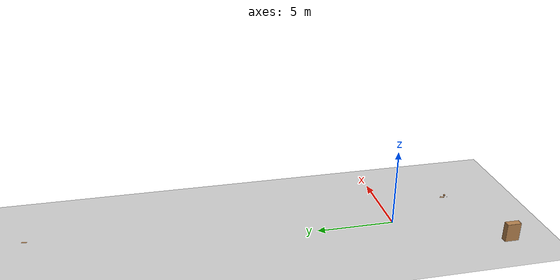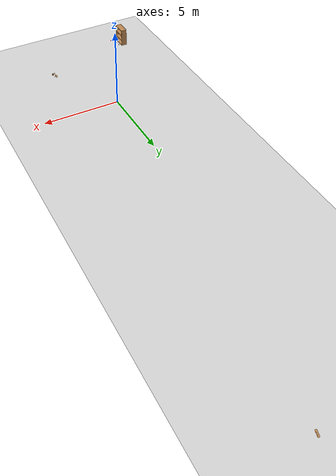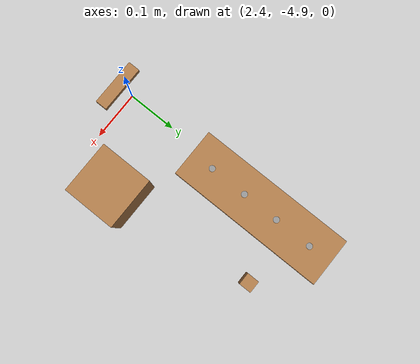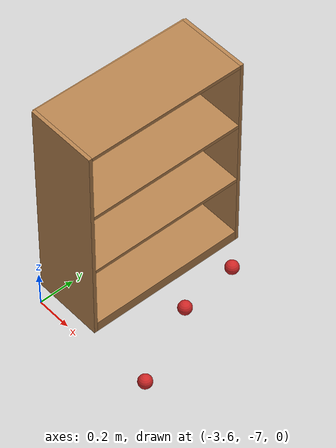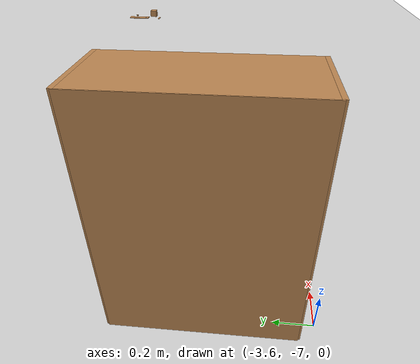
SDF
<sdf version="1.7">
 <world name="default">
  <light name="sun" type="directional">
   <pose>0 0 10 0 -0 0</pose>
   <diffuse>0.8 0.8 0.8 1</diffuse>
   <specular>0.2 0.2 0.2 1</specular>
   <attenuation>
    <range>1000</range>
    <constant>0.9</constant>
    <linear>0.01</linear>
    <quadratic>0.001</quadratic>
   </attenuation>
   <direction>-0.5 0.1 -0.9</direction>
   <spot><inner_angle>0</inner_angle><outer_angle>0</outer_angle><falloff>0</falloff></spot>
  </light>
  <model name="ground_plane">
   <static>1</static>
   <link name="link">
    <collision name="collision">
     <geometry><plane><normal>0 0 1</normal><size>100 100</size></plane></geometry>
     <surface><friction><ode><mu>100</mu><mu2>50</mu2></ode></friction></surface>
    </collision>
    <visual name="visual">
     <cast_shadows>0</cast_shadows>
     <geometry><plane><normal>0 0 1</normal><size>100 100</size></plane></geometry>
     <material>
      <script><uri>file://media/materials/scripts/gazebo.material</uri><name>Gazebo/Grey</name></script>
     </material>
    </visual>
   </link>
  </model>
  <gravity>0 0 -9.8</gravity>
  <magnetic_field>6e-06 2.3e-05 -4.2e-05</magnetic_field>
  <atmosphere type="adiabatic"/>
  <physics type="ode">
   <max_step_size>0.001</max_step_size>
   <real_time_factor>1</real_time_factor>
   <real_time_update_rate>1000</real_time_update_rate>
  </physics>
  <scene><ambient>0.4 0.4 0.4 1</ambient><background>0.7 0.7 0.7 1</background><shadows>1</shadows></scene>
  <audio><device>default</device></audio>
  <spherical_coordinates>
   <surface_model>EARTH_WGS84</surface_model>
   <latitude_deg>0</latitude_deg>
   <longitude_deg>0</longitude_deg>
   <elevation>0</elevation>
   <heading_deg>0</heading_deg>
  </spherical_coordinates>
  <model name="bookshelf">
   <static>1</static>
   <link name="link">
    <inertial><mass>1</mass></inertial>
    <collision name="back">
     <pose>0 0.005 0.6 0 -0 0</pose>
     <geometry><box><size>0.9 0.01 1.2</size></box></geometry>
    </collision>
    <visual name="visual1">
     <pose>0 0.005 0.6 0 -0 0</pose>
     <geometry><box><size>0.9 0.01 1.2</size></box></geometry>
     <material>
      <script><uri>file://media/materials/scripts/gazebo.material</uri><name>Gazebo/Wood</name></script>
     </material>
    </visual>
    <collision name="left_side">
     <pose>0.45 -0.195 0.6 0 -0 0</pose>
     <geometry><box><size>0.02 0.4 1.2</size></box></geometry>
    </collision>
    <visual name="visual2">
     <pose>0.45 -0.195 0.6 0 -0 0</pose>
     <geometry><box><size>0.02 0.4 1.2</size></box></geometry>
     <material>
      <script><uri>file://media/materials/scripts/gazebo.material</uri><name>Gazebo/Wood</name></script>
     </material>
    </visual>
    <collision name="right_side">
     <pose>-0.45 -0.195 0.6 0 -0 0</pose>
     <geometry><box><size>0.02 0.4 1.2</size></box></geometry>
    </collision>
    <visual name="visual3">
     <pose>-0.45 -0.195 0.6 0 -0 0</pose>
     <geometry><box><size>0.02 0.4 1.2</size></box></geometry>
     <material>
      <script><uri>file://media/materials/scripts/gazebo.material</uri><name>Gazebo/Wood</name></script>
     </material>
    </visual>
    <collision name="bottom">
     <pose>0 -0.195 0.03 0 -0 0</pose>
     <geometry><box><size>0.88 0.4 0.06</size></box></geometry>
    </collision>
    <visual name="visual4">
     <pose>0 -0.195 0.03 0 -0 0</pose>
     <geometry><box><size>0.88 0.4 0.06</size></box></geometry>
     <material>
      <script><uri>file://media/materials/scripts/gazebo.material</uri><name>Gazebo/Wood</name></script>
     </material>
    </visual>
    <collision name="top">
     <pose>0 -0.195 1.19 0 -0 0</pose>
     <geometry><box><size>0.88 0.4 0.02</size></box></geometry>
    </collision>
    <visual name="visual5">
     <pose>0 -0.195 1.19 0 -0 0</pose>
     <geometry><box><size>0.88 0.4 0.02</size></box></geometry>
     <material>
      <script><uri>file://media/materials/scripts/gazebo.material</uri><name>Gazebo/Wood</name></script>
     </material>
    </visual>
    <collision name="low_shelf">
     <pose>0 -0.195 0.43 0 -0 0</pose>
     <geometry><box><size>0.88 0.4 0.02</size></box></geometry>
    </collision>
    <visual name="visual6">
     <pose>0 -0.195 0.43 0 -0 0</pose>
     <geometry><box><size>0.88 0.4 0.02</size></box></geometry>
     <material>
      <script><uri>file://media/materials/scripts/gazebo.material</uri><name>Gazebo/Wood</name></script>
     </material>
    </visual>
    <collision name="high_shelf">
     <pose>0 -0.195 0.8 0 -0 0</pose>
     <geometry><box><size>0.88 0.4 0.02</size></box></geometry>
    </collision>
    <visual name="visual7">
     <pose>0 -0.195 0.8 0 -0 0</pose>
     <geometry><box><size>0.88 0.4 0.02</size></box></geometry>
     <material>
      <script><uri>file://media/materials/scripts/gazebo.material</uri><name>Gazebo/Wood</name></script>
     </material>
    </visual>
   </link>
   <pose>-3.67788 -6.46791 0 0 -0 1.5708</pose>
  </model>
  <model name="cricket_ball">
   <link name="link">
    <pose>0 0 0.0375 0 -0 0</pose>
    <inertial>
     <mass>0.1467</mass>
     <inertia>
      <ixx>8.25187e-05</ixx>
      <ixy>0</ixy>
      <ixz>0</ixz>
      <iyy>8.25187e-05</iyy>
      <iyz>0</iyz>
      <izz>8.25187e-05</izz>
     </inertia>
    </inertial>
    <collision name="collision">
     <geometry><sphere><radius>0.0375</radius></sphere></geometry>
     <surface>
      <contact>
       <poissons_ratio>0.347</poissons_ratio>
       <elastic_modulus>8.8e+09</elastic_modulus>
       <ode><kp>100000</kp><kd>100</kd><max_vel>100</max_vel><min_depth>0.001</min_depth></ode>
      </contact>
      <friction>
       <torsional>
        <coefficient>1</coefficient>
        <use_patch_radius>0</use_patch_radius>
        <surface_radius>0.01</surface_radius>
       </torsional>
      </friction>
     </surface>
    </collision>
    <visual name="visual">
     <geometry><sphere><radius>0.0375</radius></sphere></geometry>
     <material>
      <script><uri>file://media/materials/scripts/gazebo.material</uri><name>Gazebo/Red</name></script>
     </material>
    </visual>
    <velocity_decay><linear>0</linear><angular>0.005</angular></velocity_decay>
   </link>
   <pose>-2.88313 -6.95376 -0.001014 0 -0 0</pose>
  </model>
  <model name="cricket_ball_0">
   <link name="link">
    <pose>0 0 0.0375 0 -0 0</pose>
    <inertial>
     <mass>0.1467</mass>
     <inertia>
      <ixx>8.25187e-05</ixx>
      <ixy>0</ixy>
      <ixz>0</ixz>
      <iyy>8.25187e-05</iyy>
      <iyz>0</iyz>
      <izz>8.25187e-05</izz>
     </inertia>
    </inertial>
    <collision name="collision">
     <geometry><sphere><radius>0.0375</radius></sphere></geometry>
     <surface>
      <contact>
       <poissons_ratio>0.347</poissons_ratio>
       <elastic_modulus>8.8e+09</elastic_modulus>
       <ode><kp>100000</kp><kd>100</kd><max_vel>100</max_vel><min_depth>0.001</min_depth></ode>
      </contact>
      <friction>
       <torsional>
        <coefficient>1</coefficient>
        <use_patch_radius>0</use_patch_radius>
        <surface_radius>0.01</surface_radius>
       </torsional>
      </friction>
     </surface>
    </collision>
    <visual name="visual">
     <geometry><sphere><radius>0.0375</radius></sphere></geometry>
     <material>
      <script><uri>file://media/materials/scripts/gazebo.material</uri><name>Gazebo/Red</name></script>
     </material>
    </visual>
    <velocity_decay><linear>0</linear><angular>0.005</angular></velocity_decay>
   </link>
   <pose>-3.13749 -6.17942 -0.001014 0 -0 0</pose>
  </model>
  <model name="cricket_ball_1">
   <link name="link">
    <pose>0 0 0.0375 0 -0 0</pose>
    <inertial>
     <mass>0.1467</mass>
     <inertia>
      <ixx>8.25187e-05</ixx>
      <ixy>0</ixy>
      <ixz>0</ixz>
      <iyy>8.25187e-05</iyy>
      <iyz>0</iyz>
      <izz>8.25187e-05</izz>
     </inertia>
    </inertial>
    <collision name="collision">
     <geometry><sphere><radius>0.0375</radius></sphere></geometry>
     <surface>
      <contact>
       <poissons_ratio>0.347</poissons_ratio>
       <elastic_modulus>8.8e+09</elastic_modulus>
       <ode><kp>100000</kp><kd>100</kd><max_vel>100</max_vel><min_depth>0.001</min_depth></ode>
      </contact>
      <friction>
       <torsional>
        <coefficient>1</coefficient>
        <use_patch_radius>0</use_patch_radius>
        <surface_radius>0.01</surface_radius>
       </torsional>
      </friction>
     </surface>
    </collision>
    <visual name="visual">
     <geometry><sphere><radius>0.0375</radius></sphere></geometry>
     <material>
      <script><uri>file://media/materials/scripts/gazebo.material</uri><name>Gazebo/Red</name></script>
     </material>
    </visual>
    <velocity_decay><linear>0</linear><angular>0.005</angular></velocity_decay>
   </link>
   <pose>-3.09619 -6.51917 -0.001014 0 -0 0</pose>
  </model>
  <model name="wooden_board">
   <link name="base">
    <pose>0 0 0.00523 0 -0 0</pose>
    <inertial>
     <mass>0.2765</mass>
     <inertia>
      <ixx>0.0025148</ixx>
      <ixy>0</ixy>
      <ixz>0</ixz>
      <iyy>0.00024037</iyy>
      <iyz>0</iyz>
      <izz>0.00275013</izz>
     </inertia>
    </inertial>
    <collision name="collision">
     <geometry><box><size>0.1016 0.3302 0.01046</size></box></geometry>
     <surface>
      <contact>
       <poissons_ratio>0.347</poissons_ratio>
       <elastic_modulus>8.8e+09</elastic_modulus>
       <ode><kp>100000</kp><kd>100</kd><max_vel>100</max_vel><min_depth>0.001</min_depth></ode>
      </contact>
      <friction>
       <torsional>
        <coefficient>1</coefficient>
        <use_patch_radius>0</use_patch_radius>
        <surface_radius>0.01</surface_radius>
       </torsional>
      </friction>
     </surface>
    </collision>
    <visual name="visual">
     <geometry><box><size>0.1016 0.3302 0.01046</size></box></geometry>
     <material>
      <script><uri>file://media/materials/scripts/gazebo.material</uri><name>Gazebo/Wood</name></script>
     </material>
    </visual>
    <visual name="tee_nut_1">
     <pose>0 -0.116 0 0 -0 0</pose>
     <geometry><cylinder><radius>0.00635</radius><length>0.0105646</length></cylinder></geometry>
     <material>
      <script><uri>file://media/materials/scripts/gazebo.material</uri><name>Gazebo/Grey</name></script>
     </material>
    </visual>
    <visual name="tee_nut_2">
     <pose>0 -0.038 0 0 -0 0</pose>
     <geometry><cylinder><radius>0.00635</radius><length>0.0105646</length></cylinder></geometry>
     <material>
      <script><uri>file://media/materials/scripts/gazebo.material</uri><name>Gazebo/Grey</name></script>
     </material>
    </visual>
    <visual name="tee_nut_3">
     <pose>0 0.038 0 0 -0 0</pose>
     <geometry><cylinder><radius>0.00635</radius><length>0.0105646</length></cylinder></geometry>
     <material>
      <script><uri>file://media/materials/scripts/gazebo.material</uri><name>Gazebo/Grey</name></script>
     </material>
    </visual>
    <visual name="tee_nut_4">
     <pose>0 0.116 0 0 -0 0</pose>
     <geometry><cylinder><radius>0.00635</radius><length>0.0105646</length></cylinder></geometry>
     <material>
      <script><uri>file://media/materials/scripts/gazebo.material</uri><name>Gazebo/Grey</name></script>
     </material>
    </visual>
   </link>
   <pose>2.41451 -4.57372 -0.001007 0 -0 0</pose>
  </model>
  <model name="wood_cube_10cm">
   <link name="link">
    <pose>0 0 0.05 0 -0 0</pose>
    <inertial>
     <mass>0.5167</mass>
     <inertia>
      <ixx>0.000861167</ixx>
      <ixy>0</ixy>
      <ixz>0</ixz>
      <iyy>0.000861167</iyy>
      <iyz>0</iyz>
      <izz>0.000861167</izz>
     </inertia>
    </inertial>
    <collision name="collision">
     <geometry><box><size>0.1 0.1 0.1</size></box></geometry>
     <surface>
      <contact>
       <poissons_ratio>0.347</poissons_ratio>
       <elastic_modulus>8.8e+09</elastic_modulus>
       <ode><kp>100000</kp><kd>100</kd><max_vel>100</max_vel><min_depth>0.001</min_depth></ode>
      </contact>
      <friction>
       <torsional>
        <coefficient>1</coefficient>
        <use_patch_radius>0</use_patch_radius>
        <surface_radius>0.01</surface_radius>
       </torsional>
      </friction>
     </surface>
    </collision>
    <visual name="visual">
     <geometry><box><size>0.1 0.1 0.1</size></box></geometry>
     <material>
      <script><uri>file://media/materials/scripts/gazebo.material</uri><name>Gazebo/Wood</name></script>
     </material>
    </visual>
   </link>
   <pose>2.56042 -4.80316 -0.001013 0 -0 0</pose>
  </model>
  <model name="wood_block_10_2_1cm">
   <link name="link">
    <pose>0 0 0.005 0 -0 0</pose>
    <inertial>
     <mass>0.0125</mass>
     <inertia>
      <ixx>7.55208e-07</ixx>
      <ixy>0</ixy>
      <ixz>0</ixz>
      <iyy>1.05208e-05</iyy>
      <iyz>0</iyz>
      <izz>1.10677e-05</izz>
     </inertia>
    </inertial>
    <collision name="collision">
     <geometry><box><size>0.1 0.025 0.01</size></box></geometry>
     <surface>
      <contact>
       <poissons_ratio>0.347</poissons_ratio>
       <elastic_modulus>8.8e+09</elastic_modulus>
       <ode><kp>100000</kp><kd>1</kd><max_vel>1</max_vel><min_depth>0.001</min_depth></ode>
      </contact>
      <friction>
       <torsional>
        <coefficient>1</coefficient>
        <use_patch_radius>0</use_patch_radius>
        <surface_radius>0.05</surface_radius>
       </torsional>
      </friction>
     </surface>
    </collision>
    <visual name="visual">
     <geometry><box><size>0.1 0.025 0.01</size></box></geometry>
     <material>
      <script><uri>file://media/materials/scripts/gazebo.material</uri><name>Gazebo/Wood</name></script>
     </material>
    </visual>
   </link>
   <pose>2.40294 -4.93323 -0.001 0 -0 0</pose>
  </model>
  <model name="wood_cube_2_5cm">
   <link name="link">
    <pose>0 0 0.0125 0 -0 0</pose>
    <inertial>
     <mass>0.0073</mass>
     <inertia>
      <ixx>7.60417e-07</ixx>
      <ixy>0</ixy>
      <ixz>0</ixz>
      <iyy>7.60417e-07</iyy>
      <iyz>0</iyz>
      <izz>7.60417e-07</izz>
     </inertia>
    </inertial>
    <collision name="collision">
     <geometry><box><size>0.025 0.025 0.025</size></box></geometry>
     <surface>
      <contact>
       <poissons_ratio>0.347</poissons_ratio>
       <elastic_modulus>8.8e+09</elastic_modulus>
       <ode><kp>100000</kp><kd>100</kd><max_vel>100</max_vel><min_depth>0.001</min_depth></ode>
      </contact>
      <friction>
       <torsional>
        <coefficient>1</coefficient>
        <use_patch_radius>0</use_patch_radius>
        <surface_radius>0.01</surface_radius>
       </torsional>
      </friction>
     </surface>
    </collision>
    <visual name="visual">
     <geometry><box><size>0.025 0.025 0.025</size></box></geometry>
     <material>
      <script><uri>file://media/materials/scripts/gazebo.material</uri><name>Gazebo/Wood</name></script>
     </material>
    </visual>
   </link>
   <pose>2.53799 -4.5061 -0.000722 9e-05 -9e-05 -0</pose>
  </model>
  <model name="wooden_board_0">
   <link name="base">
    <pose>0 0 0.00523 0 -0 0</pose>
    <inertial>
     <mass>0.2765</mass>
     <inertia>
      <ixx>0.0025148</ixx>
      <ixy>0</ixy>
      <ixz>0</ixz>
      <iyy>0.00024037</iyy>
      <iyz>0</iyz>
      <izz>0.00275013</izz>
     </inertia>
    </inertial>
    <collision name="collision">
     <geometry><box><size>0.1016 0.3302 0.01046</size></box></geometry>
     <surface>
      <contact>
       <poissons_ratio>0.347</poissons_ratio>
       <elastic_modulus>8.8e+09</elastic_modulus>
       <ode><kp>100000</kp><kd>100</kd><max_vel>100</max_vel><min_depth>0.001</min_depth></ode>
      </contact>
      <friction>
       <torsional>
        <coefficient>1</coefficient>
        <use_patch_radius>0</use_patch_radius>
        <surface_radius>0.01</surface_radius>
       </torsional>
      </friction>
     </surface>
    </collision>
    <visual name="visual">
     <geometry><box><size>0.1016 0.3302 0.01046</size></box></geometry>
     <material>
      <script><uri>file://media/materials/scripts/gazebo.material</uri><name>Gazebo/Wood</name></script>
     </material>
    </visual>
    <visual name="tee_nut_1">
     <pose>0 -0.116 0 0 -0 0</pose>
     <geometry><cylinder><radius>0.00635</radius><length>0.0105646</length></cylinder></geometry>
     <material>
      <script><uri>file://media/materials/scripts/gazebo.material</uri><name>Gazebo/Grey</name></script>
     </material>
    </visual>
    <visual name="tee_nut_2">
     <pose>0 -0.038 0 0 -0 0</pose>
     <geometry><cylinder><radius>0.00635</radius><length>0.0105646</length></cylinder></geometry>
     <material>
      <script><uri>file://media/materials/scripts/gazebo.material</uri><name>Gazebo/Grey</name></script>
     </material>
    </visual>
    <visual name="tee_nut_3">
     <pose>0 0.038 0 0 -0 0</pose>
     <geometry><cylinder><radius>0.00635</radius><length>0.0105646</length></cylinder></geometry>
     <material>
      <script><uri>file://media/materials/scripts/gazebo.material</uri><name>Gazebo/Grey</name></script>
     </material>
    </visual>
    <visual name="tee_nut_4">
     <pose>0 0.116 0 0 -0 0</pose>
     <geometry><cylinder><radius>0.00635</radius><length>0.0105646</length></cylinder></geometry>
     <material>
      <script><uri>file://media/materials/scripts/gazebo.material</uri><name>Gazebo/Grey</name></script>
     </material>
    </visual>
   </link>
   <pose>2.56859 23.1811 0.009453 3.14159 -0 -0.271727</pose>
  </model>
 </world>
</sdf>
